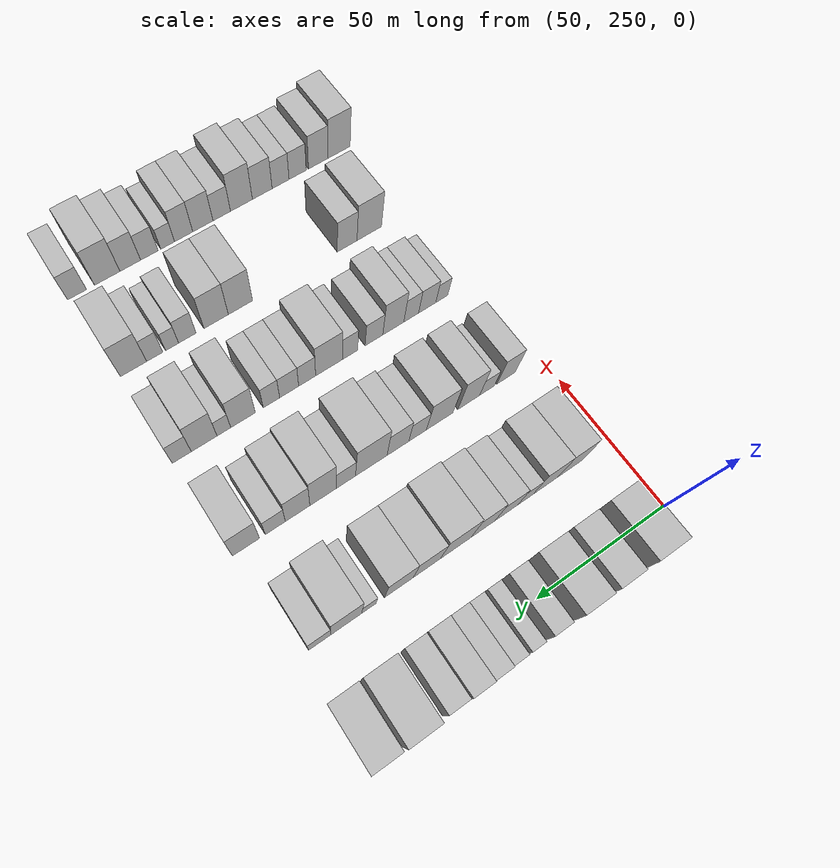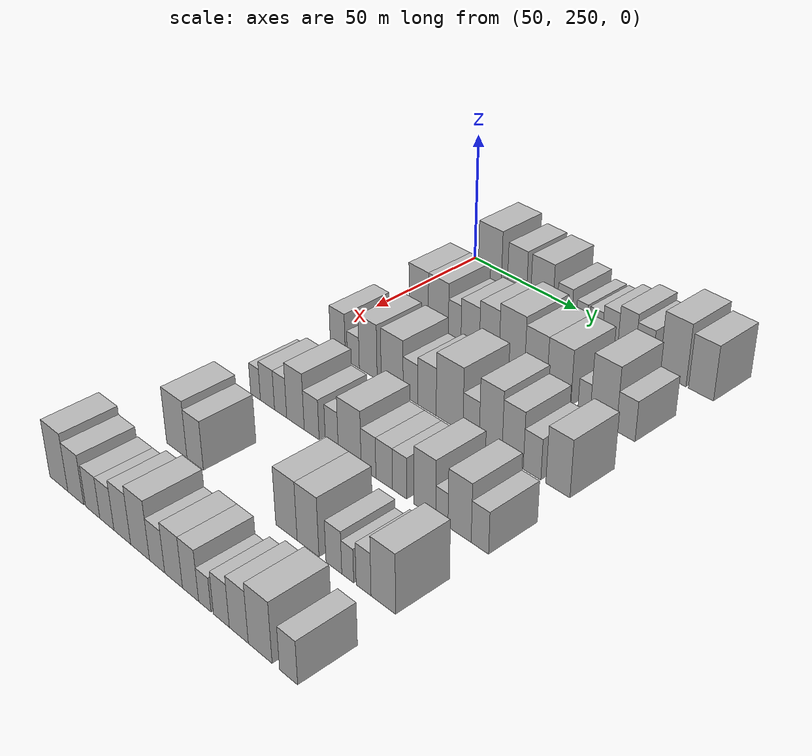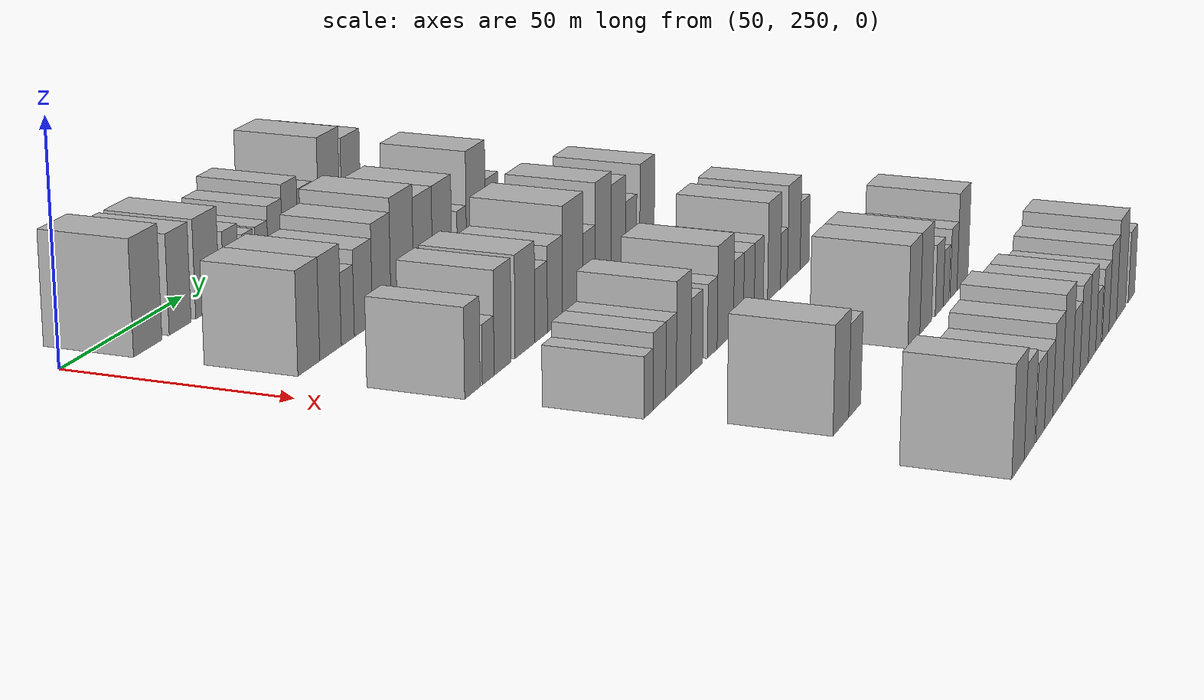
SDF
<sdf version="1.6">
 <world name="default">
  <model name="building_94">
   <static>1</static>
   <pose>50.0000 266.8254 0 0.000000 0.000000 0.000000</pose>
   <link name="link">
    <pose>0 0 12.00 0 0 0</pose>
    <collision name="collision"><geometry><box><size>20.0000 11.5621 24.0000</size></box></geometry></collision>
    <visual name="visual">
     <cast_shadows>0</cast_shadows>
     <geometry><box><size>20.0000 11.5621 24.0000</size></box></geometry>
     <material>
      <script>
       <uri>model://HANNAS_wall/materials/scripts</uri>
       <uri>model://HANNAS_wall/materials/textures</uri>
       <name>vrc/HANNAS_wall</name>
      </script>
     </material>
    </visual>
   </link>
  </model>
  <model name="building_95">
   <static>1</static>
   <pose>50.0000 280.2415 0 0.000000 0.000000 0.000000</pose>
   <link name="link">
    <pose>0 0 10.50 0 0 0</pose>
    <collision name="collision"><geometry><box><size>20.0000 9.2701 21.0000</size></box></geometry></collision>
    <visual name="visual">
     <cast_shadows>0</cast_shadows>
     <geometry><box><size>20.0000 9.2701 21.0000</size></box></geometry>
     <material>
      <script>
       <uri>model://HANNAS_wall/materials/scripts</uri>
       <uri>model://HANNAS_wall/materials/textures</uri>
       <name>vrc/HANNAS_wall</name>
      </script>
     </material>
    </visual>
   </link>
  </model>
  <model name="building_96">
   <static>1</static>
   <pose>50.0000 292.1171 0 0.000000 0.000000 0.000000</pose>
   <link name="link">
    <pose>0 0 10.50 0 0 0</pose>
    <collision name="collision"><geometry><box><size>20.0000 10.4813 21.0000</size></box></geometry></collision>
    <visual name="visual">
     <cast_shadows>0</cast_shadows>
     <geometry><box><size>20.0000 10.4813 21.0000</size></box></geometry>
     <material>
      <script>
       <uri>model://HANNAS_wall/materials/scripts</uri>
       <uri>model://HANNAS_wall/materials/textures</uri>
       <name>vrc/HANNAS_wall</name>
      </script>
     </material>
    </visual>
   </link>
  </model>
  <model name="building_97">
   <static>1</static>
   <pose>50.0000 302.7258 0 0.000000 0.000000 0.000000</pose>
   <link name="link">
    <pose>0 0 7.50 0 0 0</pose>
    <collision name="collision"><geometry><box><size>20.0000 6.7361 15.0000</size></box></geometry></collision>
    <visual name="visual">
     <cast_shadows>0</cast_shadows>
     <geometry><box><size>20.0000 6.7361 15.0000</size></box></geometry>
     <material>
      <script>
       <uri>model://HANNAS_wall/materials/scripts</uri>
       <uri>model://HANNAS_wall/materials/textures</uri>
       <name>vrc/HANNAS_wall</name>
      </script>
     </material>
    </visual>
   </link>
  </model>
  <model name="building_98">
   <static>1</static>
   <pose>50.0000 310.5782 0 0.000000 0.000000 0.000000</pose>
   <link name="link">
    <pose>0 0 6.00 0 0 0</pose>
    <collision name="collision"><geometry><box><size>20.0000 4.9687 12.0000</size></box></geometry></collision>
    <visual name="visual">
     <cast_shadows>0</cast_shadows>
     <geometry><box><size>20.0000 4.9687 12.0000</size></box></geometry>
     <material>
      <script>
       <uri>model://HANNAS_wall/materials/scripts</uri>
       <uri>model://HANNAS_wall/materials/textures</uri>
       <name>vrc/HANNAS_wall</name>
      </script>
     </material>
    </visual>
   </link>
  </model>
  <model name="building_99">
   <static>1</static>
   <pose>50.0000 316.9918 0 0.000000 0.000000 0.000000</pose>
   <link name="link">
    <pose>0 0 6.00 0 0 0</pose>
    <collision name="collision"><geometry><box><size>20.0000 5.8584 12.0000</size></box></geometry></collision>
    <visual name="visual">
     <cast_shadows>0</cast_shadows>
     <geometry><box><size>20.0000 5.8584 12.0000</size></box></geometry>
     <material>
      <script>
       <uri>model://HANNAS_wall/materials/scripts</uri>
       <uri>model://HANNAS_wall/materials/textures</uri>
       <name>vrc/HANNAS_wall</name>
      </script>
     </material>
    </visual>
   </link>
  </model>
  <model name="building_100">
   <static>1</static>
   <pose>50.0000 323.3669 0 0.000000 0.000000 0.000000</pose>
   <link name="link">
    <pose>0 0 7.50 0 0 0</pose>
    <collision name="collision"><geometry><box><size>20.0000 6.8918 15.0000</size></box></geometry></collision>
    <visual name="visual">
     <cast_shadows>0</cast_shadows>
     <geometry><box><size>20.0000 6.8918 15.0000</size></box></geometry>
     <material>
      <script>
       <uri>model://HANNAS_wall/materials/scripts</uri>
       <uri>model://HANNAS_wall/materials/textures</uri>
       <name>vrc/HANNAS_wall</name>
      </script>
     </material>
    </visual>
   </link>
  </model>
  <model name="building_101">
   <static>1</static>
   <pose>50.0000 330.6076 0 0.000000 0.000000 0.000000</pose>
   <link name="link">
    <pose>0 0 9.00 0 0 0</pose>
    <collision name="collision"><geometry><box><size>20.0000 7.5897 18.0000</size></box></geometry></collision>
    <visual name="visual">
     <cast_shadows>0</cast_shadows>
     <geometry><box><size>20.0000 7.5897 18.0000</size></box></geometry>
     <material>
      <script>
       <uri>model://HANNAS_wall/materials/scripts</uri>
       <uri>model://HANNAS_wall/materials/textures</uri>
       <name>vrc/HANNAS_wall</name>
      </script>
     </material>
    </visual>
   </link>
  </model>
  <model name="building_102">
   <static>1</static>
   <pose>50.0000 338.0944 0 0.000000 0.000000 0.000000</pose>
   <link name="link">
    <pose>0 0 7.50 0 0 0</pose>
    <collision name="collision"><geometry><box><size>20.0000 7.3841 15.0000</size></box></geometry></collision>
    <visual name="visual">
     <cast_shadows>0</cast_shadows>
     <geometry><box><size>20.0000 7.3841 15.0000</size></box></geometry>
     <material>
      <script>
       <uri>model://HANNAS_wall/materials/scripts</uri>
       <uri>model://HANNAS_wall/materials/textures</uri>
       <name>vrc/HANNAS_wall</name>
      </script>
     </material>
    </visual>
   </link>
  </model>
  <model name="building_103">
   <static>1</static>
   <pose>50.0000 350.2658 0 0.000000 0.000000 0.000000</pose>
   <link name="link">
    <pose>0 0 12.00 0 0 0</pose>
    <collision name="collision"><geometry><box><size>20.0000 10.9587 24.0000</size></box></geometry></collision>
    <visual name="visual">
     <cast_shadows>0</cast_shadows>
     <geometry><box><size>20.0000 10.9587 24.0000</size></box></geometry>
     <material>
      <script>
       <uri>model://HANNAS_wall/materials/scripts</uri>
       <uri>model://HANNAS_wall/materials/textures</uri>
       <name>vrc/HANNAS_wall</name>
      </script>
     </material>
    </visual>
   </link>
  </model>
  <model name="building_104">
   <static>1</static>
   <pose>50.0000 361.7712 0 0.000000 0.000000 0.000000</pose>
   <link name="link">
    <pose>0 0 10.50 0 0 0</pose>
    <collision name="collision"><geometry><box><size>20.0000 10.0519 21.0000</size></box></geometry></collision>
    <visual name="visual">
     <cast_shadows>0</cast_shadows>
     <geometry><box><size>20.0000 10.0519 21.0000</size></box></geometry>
     <material>
      <script>
       <uri>model://HANNAS_wall/materials/scripts</uri>
       <uri>model://HANNAS_wall/materials/textures</uri>
       <name>vrc/HANNAS_wall</name>
      </script>
     </material>
    </visual>
   </link>
  </model>
  <model name="building_221">
   <static>1</static>
   <pose>85.0000 266.5807 0 0.000000 0.000000 0.000000</pose>
   <link name="link">
    <pose>0 0 10.50 0 0 0</pose>
    <collision name="collision"><geometry><box><size>20.0000 9.7152 21.0000</size></box></geometry></collision>
    <visual name="visual">
     <cast_shadows>0</cast_shadows>
     <geometry><box><size>20.0000 9.7152 21.0000</size></box></geometry>
     <material>
      <script>
       <uri>model://HANNAS_wall/materials/scripts</uri>
       <uri>model://HANNAS_wall/materials/textures</uri>
       <name>vrc/HANNAS_wall</name>
      </script>
     </material>
    </visual>
   </link>
  </model>
  <model name="building_222">
   <static>1</static>
   <pose>85.0000 276.3650 0 0.000000 0.000000 0.000000</pose>
   <link name="link">
    <pose>0 0 10.50 0 0 0</pose>
    <collision name="collision"><geometry><box><size>20.0000 9.8534 21.0000</size></box></geometry></collision>
    <visual name="visual">
     <cast_shadows>0</cast_shadows>
     <geometry><box><size>20.0000 9.8534 21.0000</size></box></geometry>
     <material>
      <script>
       <uri>model://HANNAS_wall/materials/scripts</uri>
       <uri>model://HANNAS_wall/materials/textures</uri>
       <name>vrc/HANNAS_wall</name>
      </script>
     </material>
    </visual>
   </link>
  </model>
  <model name="building_223">
   <static>1</static>
   <pose>85.0000 284.3371 0 0.000000 0.000000 0.000000</pose>
   <link name="link">
    <pose>0 0 7.50 0 0 0</pose>
    <collision name="collision"><geometry><box><size>20.0000 6.0909 15.0000</size></box></geometry></collision>
    <visual name="visual">
     <cast_shadows>0</cast_shadows>
     <geometry><box><size>20.0000 6.0909 15.0000</size></box></geometry>
     <material>
      <script>
       <uri>model://HANNAS_wall/materials/scripts</uri>
       <uri>model://HANNAS_wall/materials/textures</uri>
       <name>vrc/HANNAS_wall</name>
      </script>
     </material>
    </visual>
   </link>
  </model>
  <model name="building_224">
   <static>1</static>
   <pose>85.0000 291.7462 0 0.000000 0.000000 0.000000</pose>
   <link name="link">
    <pose>0 0 9.00 0 0 0</pose>
    <collision name="collision"><geometry><box><size>20.0000 8.7273 18.0000</size></box></geometry></collision>
    <visual name="visual">
     <cast_shadows>0</cast_shadows>
     <geometry><box><size>20.0000 8.7273 18.0000</size></box></geometry>
     <material>
      <script>
       <uri>model://HANNAS_wall/materials/scripts</uri>
       <uri>model://HANNAS_wall/materials/textures</uri>
       <name>vrc/HANNAS_wall</name>
      </script>
     </material>
    </visual>
   </link>
  </model>
  <model name="building_225">
   <static>1</static>
   <pose>85.0000 300.6588 0 0.000000 0.000000 0.000000</pose>
   <link name="link">
    <pose>0 0 10.50 0 0 0</pose>
    <collision name="collision"><geometry><box><size>20.0000 9.0979 21.0000</size></box></geometry></collision>
    <visual name="visual">
     <cast_shadows>0</cast_shadows>
     <geometry><box><size>20.0000 9.0979 21.0000</size></box></geometry>
     <material>
      <script>
       <uri>model://HANNAS_wall/materials/scripts</uri>
       <uri>model://HANNAS_wall/materials/textures</uri>
       <name>vrc/HANNAS_wall</name>
      </script>
     </material>
    </visual>
   </link>
  </model>
  <model name="building_226">
   <static>1</static>
   <pose>85.0000 310.9662 0 0.000000 0.000000 0.000000</pose>
   <link name="link">
    <pose>0 0 12.00 0 0 0</pose>
    <collision name="collision"><geometry><box><size>20.0000 11.5169 24.0000</size></box></geometry></collision>
    <visual name="visual">
     <cast_shadows>0</cast_shadows>
     <geometry><box><size>20.0000 11.5169 24.0000</size></box></geometry>
     <material>
      <script>
       <uri>model://HANNAS_wall/materials/scripts</uri>
       <uri>model://HANNAS_wall/materials/textures</uri>
       <name>vrc/HANNAS_wall</name>
      </script>
     </material>
    </visual>
   </link>
  </model>
  <model name="building_227">
   <static>1</static>
   <pose>85.0000 321.6649 0 0.000000 0.000000 0.000000</pose>
   <link name="link">
    <pose>0 0 10.50 0 0 0</pose>
    <collision name="collision"><geometry><box><size>20.0000 9.8803 21.0000</size></box></geometry></collision>
    <visual name="visual">
     <cast_shadows>0</cast_shadows>
     <geometry><box><size>20.0000 9.8803 21.0000</size></box></geometry>
     <material>
      <script>
       <uri>model://HANNAS_wall/materials/scripts</uri>
       <uri>model://HANNAS_wall/materials/textures</uri>
       <name>vrc/HANNAS_wall</name>
      </script>
     </material>
    </visual>
   </link>
  </model>
  <model name="building_228">
   <static>1</static>
   <pose>85.0000 331.7912 0 0.000000 0.000000 0.000000</pose>
   <link name="link">
    <pose>0 0 10.50 0 0 0</pose>
    <collision name="collision"><geometry><box><size>20.0000 10.3722 21.0000</size></box></geometry></collision>
    <visual name="visual">
     <cast_shadows>0</cast_shadows>
     <geometry><box><size>20.0000 10.3722 21.0000</size></box></geometry>
     <material>
      <script>
       <uri>model://HANNAS_wall/materials/scripts</uri>
       <uri>model://HANNAS_wall/materials/textures</uri>
       <name>vrc/HANNAS_wall</name>
      </script>
     </material>
    </visual>
   </link>
  </model>
  <model name="building_229">
   <static>1</static>
   <pose>85.0000 342.5302 0 0.000000 0.000000 0.000000</pose>
   <link name="link">
    <pose>0 0 6.00 0 0 0</pose>
    <collision name="collision"><geometry><box><size>20.0000 5.1058 12.0000</size></box></geometry></collision>
    <visual name="visual">
     <cast_shadows>0</cast_shadows>
     <geometry><box><size>20.0000 5.1058 12.0000</size></box></geometry>
     <material>
      <script>
       <uri>model://HANNAS_wall/materials/scripts</uri>
       <uri>model://HANNAS_wall/materials/textures</uri>
       <name>vrc/HANNAS_wall</name>
      </script>
     </material>
    </visual>
   </link>
  </model>
  <model name="building_230">
   <static>1</static>
   <pose>85.0000 350.4660 0 0.000000 0.000000 0.000000</pose>
   <link name="link">
    <pose>0 0 12.00 0 0 0</pose>
    <collision name="collision"><geometry><box><size>20.0000 10.7658 24.0000</size></box></geometry></collision>
    <visual name="visual">
     <cast_shadows>0</cast_shadows>
     <geometry><box><size>20.0000 10.7658 24.0000</size></box></geometry>
     <material>
      <script>
       <uri>model://HANNAS_wall/materials/scripts</uri>
       <uri>model://HANNAS_wall/materials/textures</uri>
       <name>vrc/HANNAS_wall</name>
      </script>
     </material>
    </visual>
   </link>
  </model>
  <model name="building_231">
   <static>1</static>
   <pose>85.0000 359.5985 0 0.000000 0.000000 0.000000</pose>
   <link name="link">
    <pose>0 0 7.50 0 0 0</pose>
    <collision name="collision"><geometry><box><size>20.0000 7.4993 15.0000</size></box></geometry></collision>
    <visual name="visual">
     <cast_shadows>0</cast_shadows>
     <geometry><box><size>20.0000 7.4993 15.0000</size></box></geometry>
     <material>
      <script>
       <uri>model://HANNAS_wall/materials/scripts</uri>
       <uri>model://HANNAS_wall/materials/textures</uri>
       <name>vrc/HANNAS_wall</name>
      </script>
     </material>
    </visual>
   </link>
  </model>
  <model name="building_348">
   <static>1</static>
   <pose>120.0000 264.2456 0 0.000000 0.000000 0.000000</pose>
   <link name="link">
    <pose>0 0 9.00 0 0 0</pose>
    <collision name="collision"><geometry><box><size>20.0000 7.5755 18.0000</size></box></geometry></collision>
    <visual name="visual">
     <cast_shadows>0</cast_shadows>
     <geometry><box><size>20.0000 7.5755 18.0000</size></box></geometry>
     <material>
      <script>
       <uri>model://HANNAS_wall/materials/scripts</uri>
       <uri>model://HANNAS_wall/materials/textures</uri>
       <name>vrc/HANNAS_wall</name>
      </script>
     </material>
    </visual>
   </link>
  </model>
  <model name="building_349">
   <static>1</static>
   <pose>120.0000 272.0163 0 0.000000 0.000000 0.000000</pose>
   <link name="link">
    <pose>0 0 6.00 0 0 0</pose>
    <collision name="collision"><geometry><box><size>20.0000 5.9661 12.0000</size></box></geometry></collision>
    <visual name="visual">
     <cast_shadows>0</cast_shadows>
     <geometry><box><size>20.0000 5.9661 12.0000</size></box></geometry>
     <material>
      <script>
       <uri>model://HANNAS_wall/materials/scripts</uri>
       <uri>model://HANNAS_wall/materials/textures</uri>
       <name>vrc/HANNAS_wall</name>
      </script>
     </material>
    </visual>
   </link>
  </model>
  <model name="building_350">
   <static>1</static>
   <pose>120.0000 279.3815 0 0.000000 0.000000 0.000000</pose>
   <link name="link">
    <pose>0 0 10.50 0 0 0</pose>
    <collision name="collision"><geometry><box><size>20.0000 8.7643 21.0000</size></box></geometry></collision>
    <visual name="visual">
     <cast_shadows>0</cast_shadows>
     <geometry><box><size>20.0000 8.7643 21.0000</size></box></geometry>
     <material>
      <script>
       <uri>model://HANNAS_wall/materials/scripts</uri>
       <uri>model://HANNAS_wall/materials/textures</uri>
       <name>vrc/HANNAS_wall</name>
      </script>
     </material>
    </visual>
   </link>
  </model>
  <model name="building_351">
   <static>1</static>
   <pose>120.0000 291.0115 0 0.000000 0.000000 0.000000</pose>
   <link name="link">
    <pose>0 0 10.50 0 0 0</pose>
    <collision name="collision"><geometry><box><size>20.0000 10.4957 21.0000</size></box></geometry></collision>
    <visual name="visual">
     <cast_shadows>0</cast_shadows>
     <geometry><box><size>20.0000 10.4957 21.0000</size></box></geometry>
     <material>
      <script>
       <uri>model://HANNAS_wall/materials/scripts</uri>
       <uri>model://HANNAS_wall/materials/textures</uri>
       <name>vrc/HANNAS_wall</name>
      </script>
     </material>
    </visual>
   </link>
  </model>
  <model name="building_352">
   <static>1</static>
   <pose>120.0000 299.6904 0 0.000000 0.000000 0.000000</pose>
   <link name="link">
    <pose>0 0 7.50 0 0 0</pose>
    <collision name="collision"><geometry><box><size>20.0000 6.8620 15.0000</size></box></geometry></collision>
    <visual name="visual">
     <cast_shadows>0</cast_shadows>
     <geometry><box><size>20.0000 6.8620 15.0000</size></box></geometry>
     <material>
      <script>
       <uri>model://HANNAS_wall/materials/scripts</uri>
       <uri>model://HANNAS_wall/materials/textures</uri>
       <name>vrc/HANNAS_wall</name>
      </script>
     </material>
    </visual>
   </link>
  </model>
  <model name="building_353">
   <static>1</static>
   <pose>120.0000 307.3112 0 0.000000 0.000000 0.000000</pose>
   <link name="link">
    <pose>0 0 9.00 0 0 0</pose>
    <collision name="collision"><geometry><box><size>20.0000 8.3797 18.0000</size></box></geometry></collision>
    <visual name="visual">
     <cast_shadows>0</cast_shadows>
     <geometry><box><size>20.0000 8.3797 18.0000</size></box></geometry>
     <material>
      <script>
       <uri>model://HANNAS_wall/materials/scripts</uri>
       <uri>model://HANNAS_wall/materials/textures</uri>
       <name>vrc/HANNAS_wall</name>
      </script>
     </material>
    </visual>
   </link>
  </model>
  <model name="building_354">
   <static>1</static>
   <pose>120.0000 317.4723 0 0.000000 0.000000 0.000000</pose>
   <link name="link">
    <pose>0 0 12.00 0 0 0</pose>
    <collision name="collision"><geometry><box><size>20.0000 11.9426 24.0000</size></box></geometry></collision>
    <visual name="visual">
     <cast_shadows>0</cast_shadows>
     <geometry><box><size>20.0000 11.9426 24.0000</size></box></geometry>
     <material>
      <script>
       <uri>model://HANNAS_wall/materials/scripts</uri>
       <uri>model://HANNAS_wall/materials/textures</uri>
       <name>vrc/HANNAS_wall</name>
      </script>
     </material>
    </visual>
   </link>
  </model>
  <model name="building_355">
   <static>1</static>
   <pose>120.0000 326.9856 0 0.000000 0.000000 0.000000</pose>
   <link name="link">
    <pose>0 0 7.50 0 0 0</pose>
    <collision name="collision"><geometry><box><size>20.0000 7.0841 15.0000</size></box></geometry></collision>
    <visual name="visual">
     <cast_shadows>0</cast_shadows>
     <geometry><box><size>20.0000 7.0841 15.0000</size></box></geometry>
     <material>
      <script>
       <uri>model://HANNAS_wall/materials/scripts</uri>
       <uri>model://HANNAS_wall/materials/textures</uri>
       <name>vrc/HANNAS_wall</name>
      </script>
     </material>
    </visual>
   </link>
  </model>
  <model name="building_356">
   <static>1</static>
   <pose>120.0000 335.3794 0 0.000000 0.000000 0.000000</pose>
   <link name="link">
    <pose>0 0 12.00 0 0 0</pose>
    <collision name="collision"><geometry><box><size>20.0000 9.7035 24.0000</size></box></geometry></collision>
    <visual name="visual">
     <cast_shadows>0</cast_shadows>
     <geometry><box><size>20.0000 9.7035 24.0000</size></box></geometry>
     <material>
      <script>
       <uri>model://HANNAS_wall/materials/scripts</uri>
       <uri>model://HANNAS_wall/materials/textures</uri>
       <name>vrc/HANNAS_wall</name>
      </script>
     </material>
    </visual>
   </link>
  </model>
  <model name="building_357">
   <static>1</static>
   <pose>120.0000 344.6459 0 0.000000 0.000000 0.000000</pose>
   <link name="link">
    <pose>0 0 10.50 0 0 0</pose>
    <collision name="collision"><geometry><box><size>20.0000 8.8295 21.0000</size></box></geometry></collision>
    <visual name="visual">
     <cast_shadows>0</cast_shadows>
     <geometry><box><size>20.0000 8.8295 21.0000</size></box></geometry>
     <material>
      <script>
       <uri>model://HANNAS_wall/materials/scripts</uri>
       <uri>model://HANNAS_wall/materials/textures</uri>
       <name>vrc/HANNAS_wall</name>
      </script>
     </material>
    </visual>
   </link>
  </model>
  <model name="building_358">
   <static>1</static>
   <pose>120.0000 352.6520 0 0.000000 0.000000 0.000000</pose>
   <link name="link">
    <pose>0 0 7.50 0 0 0</pose>
    <collision name="collision"><geometry><box><size>20.0000 7.1827 15.0000</size></box></geometry></collision>
    <visual name="visual">
     <cast_shadows>0</cast_shadows>
     <geometry><box><size>20.0000 7.1827 15.0000</size></box></geometry>
     <material>
      <script>
       <uri>model://HANNAS_wall/materials/scripts</uri>
       <uri>model://HANNAS_wall/materials/textures</uri>
       <name>vrc/HANNAS_wall</name>
      </script>
     </material>
    </visual>
   </link>
  </model>
  <model name="building_359">
   <static>1</static>
   <pose>120.0000 363.0070 0 0.000000 0.000000 0.000000</pose>
   <link name="link">
    <pose>0 0 10.50 0 0 0</pose>
    <collision name="collision"><geometry><box><size>20.0000 9.5272 21.0000</size></box></geometry></collision>
    <visual name="visual">
     <cast_shadows>0</cast_shadows>
     <geometry><box><size>20.0000 9.5272 21.0000</size></box></geometry>
     <material>
      <script>
       <uri>model://HANNAS_wall/materials/scripts</uri>
       <uri>model://HANNAS_wall/materials/textures</uri>
       <name>vrc/HANNAS_wall</name>
      </script>
     </material>
    </visual>
   </link>
  </model>
  <model name="building_475">
   <static>1</static>
   <pose>155.0000 264.2606 0 0.000000 0.000000 0.000000</pose>
   <link name="link">
    <pose>0 0 6.00 0 0 0</pose>
    <collision name="collision"><geometry><box><size>20.0000 5.0499 12.0000</size></box></geometry></collision>
    <visual name="visual">
     <cast_shadows>0</cast_shadows>
     <geometry><box><size>20.0000 5.0499 12.0000</size></box></geometry>
     <material>
      <script>
       <uri>model://HANNAS_wall/materials/scripts</uri>
       <uri>model://HANNAS_wall/materials/textures</uri>
       <name>vrc/HANNAS_wall</name>
      </script>
     </material>
    </visual>
   </link>
  </model>
  <model name="building_476">
   <static>1</static>
   <pose>155.0000 270.3635 0 0.000000 0.000000 0.000000</pose>
   <link name="link">
    <pose>0 0 7.50 0 0 0</pose>
    <collision name="collision"><geometry><box><size>20.0000 7.1559 15.0000</size></box></geometry></collision>
    <visual name="visual">
     <cast_shadows>0</cast_shadows>
     <geometry><box><size>20.0000 7.1559 15.0000</size></box></geometry>
     <material>
      <script>
       <uri>model://HANNAS_wall/materials/scripts</uri>
       <uri>model://HANNAS_wall/materials/textures</uri>
       <name>vrc/HANNAS_wall</name>
      </script>
     </material>
    </visual>
   </link>
  </model>
  <model name="building_477">
   <static>1</static>
   <pose>155.0000 276.9947 0 0.000000 0.000000 0.000000</pose>
   <link name="link">
    <pose>0 0 7.50 0 0 0</pose>
    <collision name="collision"><geometry><box><size>20.0000 6.1066 15.0000</size></box></geometry></collision>
    <visual name="visual">
     <cast_shadows>0</cast_shadows>
     <geometry><box><size>20.0000 6.1066 15.0000</size></box></geometry>
     <material>
      <script>
       <uri>model://HANNAS_wall/materials/scripts</uri>
       <uri>model://HANNAS_wall/materials/textures</uri>
       <name>vrc/HANNAS_wall</name>
      </script>
     </material>
    </visual>
   </link>
  </model>
  <model name="building_478">
   <static>1</static>
   <pose>155.0000 284.3536 0 0.000000 0.000000 0.000000</pose>
   <link name="link">
    <pose>0 0 10.50 0 0 0</pose>
    <collision name="collision"><geometry><box><size>20.0000 8.6113 21.0000</size></box></geometry></collision>
    <visual name="visual">
     <cast_shadows>0</cast_shadows>
     <geometry><box><size>20.0000 8.6113 21.0000</size></box></geometry>
     <material>
      <script>
       <uri>model://HANNAS_wall/materials/scripts</uri>
       <uri>model://HANNAS_wall/materials/textures</uri>
       <name>vrc/HANNAS_wall</name>
      </script>
     </material>
    </visual>
   </link>
  </model>
  <model name="building_479">
   <static>1</static>
   <pose>155.0000 292.2371 0 0.000000 0.000000 0.000000</pose>
   <link name="link">
    <pose>0 0 7.50 0 0 0</pose>
    <collision name="collision"><geometry><box><size>20.0000 7.1555 15.0000</size></box></geometry></collision>
    <visual name="visual">
     <cast_shadows>0</cast_shadows>
     <geometry><box><size>20.0000 7.1555 15.0000</size></box></geometry>
     <material>
      <script>
       <uri>model://HANNAS_wall/materials/scripts</uri>
       <uri>model://HANNAS_wall/materials/textures</uri>
       <name>vrc/HANNAS_wall</name>
      </script>
     </material>
    </visual>
   </link>
  </model>
  <model name="building_480">
   <static>1</static>
   <pose>155.0000 301.8315 0 0.000000 0.000000 0.000000</pose>
   <link name="link">
    <pose>0 0 7.50 0 0 0</pose>
    <collision name="collision"><geometry><box><size>20.0000 6.0334 15.0000</size></box></geometry></collision>
    <visual name="visual">
     <cast_shadows>0</cast_shadows>
     <geometry><box><size>20.0000 6.0334 15.0000</size></box></geometry>
     <material>
      <script>
       <uri>model://HANNAS_wall/materials/scripts</uri>
       <uri>model://HANNAS_wall/materials/textures</uri>
       <name>vrc/HANNAS_wall</name>
      </script>
     </material>
    </visual>
   </link>
  </model>
  <model name="building_481">
   <static>1</static>
   <pose>155.0000 310.0880 0 0.000000 0.000000 0.000000</pose>
   <link name="link">
    <pose>0 0 10.50 0 0 0</pose>
    <collision name="collision"><geometry><box><size>20.0000 10.4796 21.0000</size></box></geometry></collision>
    <visual name="visual">
     <cast_shadows>0</cast_shadows>
     <geometry><box><size>20.0000 10.4796 21.0000</size></box></geometry>
     <material>
      <script>
       <uri>model://HANNAS_wall/materials/scripts</uri>
       <uri>model://HANNAS_wall/materials/textures</uri>
       <name>vrc/HANNAS_wall</name>
      </script>
     </material>
    </visual>
   </link>
  </model>
  <model name="building_482">
   <static>1</static>
   <pose>155.0000 318.6158 0 0.000000 0.000000 0.000000</pose>
   <link name="link">
    <pose>0 0 7.50 0 0 0</pose>
    <collision name="collision"><geometry><box><size>20.0000 6.5760 15.0000</size></box></geometry></collision>
    <visual name="visual">
     <cast_shadows>0</cast_shadows>
     <geometry><box><size>20.0000 6.5760 15.0000</size></box></geometry>
     <material>
      <script>
       <uri>model://HANNAS_wall/materials/scripts</uri>
       <uri>model://HANNAS_wall/materials/textures</uri>
       <name>vrc/HANNAS_wall</name>
      </script>
     </material>
    </visual>
   </link>
  </model>
  <model name="building_483">
   <static>1</static>
   <pose>155.0000 325.5291 0 0.000000 0.000000 0.000000</pose>
   <link name="link">
    <pose>0 0 7.50 0 0 0</pose>
    <collision name="collision"><geometry><box><size>20.0000 7.2507 15.0000</size></box></geometry></collision>
    <visual name="visual">
     <cast_shadows>0</cast_shadows>
     <geometry><box><size>20.0000 7.2507 15.0000</size></box></geometry>
     <material>
      <script>
       <uri>model://HANNAS_wall/materials/scripts</uri>
       <uri>model://HANNAS_wall/materials/textures</uri>
       <name>vrc/HANNAS_wall</name>
      </script>
     </material>
    </visual>
   </link>
  </model>
  <model name="building_484">
   <static>1</static>
   <pose>155.0000 332.2553 0 0.000000 0.000000 0.000000</pose>
   <link name="link">
    <pose>0 0 7.50 0 0 0</pose>
    <collision name="collision"><geometry><box><size>20.0000 6.2016 15.0000</size></box></geometry></collision>
    <visual name="visual">
     <cast_shadows>0</cast_shadows>
     <geometry><box><size>20.0000 6.2016 15.0000</size></box></geometry>
     <material>
      <script>
       <uri>model://HANNAS_wall/materials/scripts</uri>
       <uri>model://HANNAS_wall/materials/textures</uri>
       <name>vrc/HANNAS_wall</name>
      </script>
     </material>
    </visual>
   </link>
  </model>
  <model name="building_485">
   <static>1</static>
   <pose>155.0000 342.9175 0 0.000000 0.000000 0.000000</pose>
   <link name="link">
    <pose>0 0 10.50 0 0 0</pose>
    <collision name="collision"><geometry><box><size>20.0000 9.1228 21.0000</size></box></geometry></collision>
    <visual name="visual">
     <cast_shadows>0</cast_shadows>
     <geometry><box><size>20.0000 9.1228 21.0000</size></box></geometry>
     <material>
      <script>
       <uri>model://HANNAS_wall/materials/scripts</uri>
       <uri>model://HANNAS_wall/materials/textures</uri>
       <name>vrc/HANNAS_wall</name>
      </script>
     </material>
    </visual>
   </link>
  </model>
  <model name="building_486">
   <static>1</static>
   <pose>155.0000 350.0030 0 0.000000 0.000000 0.000000</pose>
   <link name="link">
    <pose>0 0 6.00 0 0 0</pose>
    <collision name="collision"><geometry><box><size>20.0000 5.0483 12.0000</size></box></geometry></collision>
    <visual name="visual">
     <cast_shadows>0</cast_shadows>
     <geometry><box><size>20.0000 5.0483 12.0000</size></box></geometry>
     <material>
      <script>
       <uri>model://HANNAS_wall/materials/scripts</uri>
       <uri>model://HANNAS_wall/materials/textures</uri>
       <name>vrc/HANNAS_wall</name>
      </script>
     </material>
    </visual>
   </link>
  </model>
  <model name="building_487">
   <static>1</static>
   <pose>155.0000 357.1877 0 0.000000 0.000000 0.000000</pose>
   <link name="link">
    <pose>0 0 10.50 0 0 0</pose>
    <collision name="collision"><geometry><box><size>20.0000 9.3211 21.0000</size></box></geometry></collision>
    <visual name="visual">
     <cast_shadows>0</cast_shadows>
     <geometry><box><size>20.0000 9.3211 21.0000</size></box></geometry>
     <material>
      <script>
       <uri>model://HANNAS_wall/materials/scripts</uri>
       <uri>model://HANNAS_wall/materials/textures</uri>
       <name>vrc/HANNAS_wall</name>
      </script>
     </material>
    </visual>
   </link>
  </model>
  <model name="building_488">
   <static>1</static>
   <pose>155.0000 365.2657 0 0.000000 0.000000 0.000000</pose>
   <link name="link">
    <pose>0 0 7.50 0 0 0</pose>
    <collision name="collision"><geometry><box><size>20.0000 6.8349 15.0000</size></box></geometry></collision>
    <visual name="visual">
     <cast_shadows>0</cast_shadows>
     <geometry><box><size>20.0000 6.8349 15.0000</size></box></geometry>
     <material>
      <script>
       <uri>model://HANNAS_wall/materials/scripts</uri>
       <uri>model://HANNAS_wall/materials/textures</uri>
       <name>vrc/HANNAS_wall</name>
      </script>
     </material>
    </visual>
   </link>
  </model>
  <model name="building_603">
   <static>1</static>
   <pose>190.0000 270.0010 0 0.000000 0.000000 0.000000</pose>
   <link name="link">
    <pose>0 0 10.50 0 0 0</pose>
    <collision name="collision"><geometry><box><size>20.0000 10.4554 21.0000</size></box></geometry></collision>
    <visual name="visual">
     <cast_shadows>0</cast_shadows>
     <geometry><box><size>20.0000 10.4554 21.0000</size></box></geometry>
     <material>
      <script>
       <uri>model://HANNAS_wall/materials/scripts</uri>
       <uri>model://HANNAS_wall/materials/textures</uri>
       <name>vrc/HANNAS_wall</name>
      </script>
     </material>
    </visual>
   </link>
  </model>
  <model name="building_604">
   <static>1</static>
   <pose>190.0000 279.3742 0 0.000000 0.000000 0.000000</pose>
   <link name="link">
    <pose>0 0 9.00 0 0 0</pose>
    <collision name="collision"><geometry><box><size>20.0000 8.2908 18.0000</size></box></geometry></collision>
    <visual name="visual">
     <cast_shadows>0</cast_shadows>
     <geometry><box><size>20.0000 8.2908 18.0000</size></box></geometry>
     <material>
      <script>
       <uri>model://HANNAS_wall/materials/scripts</uri>
       <uri>model://HANNAS_wall/materials/textures</uri>
       <name>vrc/HANNAS_wall</name>
      </script>
     </material>
    </visual>
   </link>
  </model>
  <model name="building_605">
   <static>1</static>
   <pose>190.0000 322.8212 0 0.000000 0.000000 0.000000</pose>
   <link name="link">
    <pose>0 0 10.50 0 0 0</pose>
    <collision name="collision"><geometry><box><size>20.0000 9.5344 21.0000</size></box></geometry></collision>
    <visual name="visual">
     <cast_shadows>0</cast_shadows>
     <geometry><box><size>20.0000 9.5344 21.0000</size></box></geometry>
     <material>
      <script>
       <uri>model://HANNAS_wall/materials/scripts</uri>
       <uri>model://HANNAS_wall/materials/textures</uri>
       <name>vrc/HANNAS_wall</name>
      </script>
     </material>
    </visual>
   </link>
  </model>
  <model name="building_606">
   <static>1</static>
   <pose>190.0000 332.3296 0 0.000000 0.000000 0.000000</pose>
   <link name="link">
    <pose>0 0 10.50 0 0 0</pose>
    <collision name="collision"><geometry><box><size>20.0000 9.4825 21.0000</size></box></geometry></collision>
    <visual name="visual">
     <cast_shadows>0</cast_shadows>
     <geometry><box><size>20.0000 9.4825 21.0000</size></box></geometry>
     <material>
      <script>
       <uri>model://HANNAS_wall/materials/scripts</uri>
       <uri>model://HANNAS_wall/materials/textures</uri>
       <name>vrc/HANNAS_wall</name>
      </script>
     </material>
    </visual>
   </link>
  </model>
  <model name="building_607">
   <static>1</static>
   <pose>190.0000 343.3982 0 0.000000 0.000000 0.000000</pose>
   <link name="link">
    <pose>0 0 7.50 0 0 0</pose>
    <collision name="collision"><geometry><box><size>20.0000 6.6548 15.0000</size></box></geometry></collision>
    <visual name="visual">
     <cast_shadows>0</cast_shadows>
     <geometry><box><size>20.0000 6.6548 15.0000</size></box></geometry>
     <material>
      <script>
       <uri>model://HANNAS_wall/materials/scripts</uri>
       <uri>model://HANNAS_wall/materials/textures</uri>
       <name>vrc/HANNAS_wall</name>
      </script>
     </material>
    </visual>
   </link>
  </model>
  <model name="building_608">
   <static>1</static>
   <pose>190.0000 349.1957 0 0.000000 0.000000 0.000000</pose>
   <link name="link">
    <pose>0 0 6.00 0 0 0</pose>
    <collision name="collision"><geometry><box><size>20.0000 4.9402 12.0000</size></box></geometry></collision>
    <visual name="visual">
     <cast_shadows>0</cast_shadows>
     <geometry><box><size>20.0000 4.9402 12.0000</size></box></geometry>
     <material>
      <script>
       <uri>model://HANNAS_wall/materials/scripts</uri>
       <uri>model://HANNAS_wall/materials/textures</uri>
       <name>vrc/HANNAS_wall</name>
      </script>
     </material>
    </visual>
   </link>
  </model>
  <model name="building_609">
   <static>1</static>
   <pose>190.0000 355.6847 0 0.000000 0.000000 0.000000</pose>
   <link name="link">
    <pose>0 0 7.50 0 0 0</pose>
    <collision name="collision"><geometry><box><size>20.0000 6.0377 15.0000</size></box></geometry></collision>
    <visual name="visual">
     <cast_shadows>0</cast_shadows>
     <geometry><box><size>20.0000 6.0377 15.0000</size></box></geometry>
     <material>
      <script>
       <uri>model://HANNAS_wall/materials/scripts</uri>
       <uri>model://HANNAS_wall/materials/textures</uri>
       <name>vrc/HANNAS_wall</name>
      </script>
     </material>
    </visual>
   </link>
  </model>
  <model name="building_610">
   <static>1</static>
   <pose>190.0000 363.5736 0 0.000000 0.000000 0.000000</pose>
   <link name="link">
    <pose>0 0 10.50 0 0 0</pose>
    <collision name="collision"><geometry><box><size>20.0000 9.7400 21.0000</size></box></geometry></collision>
    <visual name="visual">
     <cast_shadows>0</cast_shadows>
     <geometry><box><size>20.0000 9.7400 21.0000</size></box></geometry>
     <material>
      <script>
       <uri>model://HANNAS_wall/materials/scripts</uri>
       <uri>model://HANNAS_wall/materials/textures</uri>
       <name>vrc/HANNAS_wall</name>
      </script>
     </material>
    </visual>
   </link>
  </model>
  <model name="building_729">
   <static>1</static>
   <pose>225.0000 259.4047 0 0.000000 0.000000 0.000000</pose>
   <link name="link">
    <pose>0 0 10.50 0 0 0</pose>
    <collision name="collision"><geometry><box><size>20.0000 9.8108 21.0000</size></box></geometry></collision>
    <visual name="visual">
     <cast_shadows>0</cast_shadows>
     <geometry><box><size>20.0000 9.8108 21.0000</size></box></geometry>
     <material>
      <script>
       <uri>model://HANNAS_wall/materials/scripts</uri>
       <uri>model://HANNAS_wall/materials/textures</uri>
       <name>vrc/HANNAS_wall</name>
      </script>
     </material>
    </visual>
   </link>
  </model>
  <model name="building_730">
   <static>1</static>
   <pose>225.0000 268.5598 0 0.000000 0.000000 0.000000</pose>
   <link name="link">
    <pose>0 0 9.00 0 0 0</pose>
    <collision name="collision"><geometry><box><size>20.0000 8.4994 18.0000</size></box></geometry></collision>
    <visual name="visual">
     <cast_shadows>0</cast_shadows>
     <geometry><box><size>20.0000 8.4994 18.0000</size></box></geometry>
     <material>
      <script>
       <uri>model://HANNAS_wall/materials/scripts</uri>
       <uri>model://HANNAS_wall/materials/textures</uri>
       <name>vrc/HANNAS_wall</name>
      </script>
     </material>
    </visual>
   </link>
  </model>
  <model name="building_731">
   <static>1</static>
   <pose>225.0000 277.5098 0 0.000000 0.000000 0.000000</pose>
   <link name="link">
    <pose>0 0 7.50 0 0 0</pose>
    <collision name="collision"><geometry><box><size>20.0000 7.4007 15.0000</size></box></geometry></collision>
    <visual name="visual">
     <cast_shadows>0</cast_shadows>
     <geometry><box><size>20.0000 7.4007 15.0000</size></box></geometry>
     <material>
      <script>
       <uri>model://HANNAS_wall/materials/scripts</uri>
       <uri>model://HANNAS_wall/materials/textures</uri>
       <name>vrc/HANNAS_wall</name>
      </script>
     </material>
    </visual>
   </link>
  </model>
  <model name="building_732">
   <static>1</static>
   <pose>225.0000 284.8065 0 0.000000 0.000000 0.000000</pose>
   <link name="link">
    <pose>0 0 7.50 0 0 0</pose>
    <collision name="collision"><geometry><box><size>20.0000 7.1926 15.0000</size></box></geometry></collision>
    <visual name="visual">
     <cast_shadows>0</cast_shadows>
     <geometry><box><size>20.0000 7.1926 15.0000</size></box></geometry>
     <material>
      <script>
       <uri>model://HANNAS_wall/materials/scripts</uri>
       <uri>model://HANNAS_wall/materials/textures</uri>
       <name>vrc/HANNAS_wall</name>
      </script>
     </material>
    </visual>
   </link>
  </model>
  <model name="building_733">
   <static>1</static>
   <pose>225.0000 292.5763 0 0.000000 0.000000 0.000000</pose>
   <link name="link">
    <pose>0 0 9.00 0 0 0</pose>
    <collision name="collision"><geometry><box><size>20.0000 8.3470 18.0000</size></box></geometry></collision>
    <visual name="visual">
     <cast_shadows>0</cast_shadows>
     <geometry><box><size>20.0000 8.3470 18.0000</size></box></geometry>
     <material>
      <script>
       <uri>model://HANNAS_wall/materials/scripts</uri>
       <uri>model://HANNAS_wall/materials/textures</uri>
       <name>vrc/HANNAS_wall</name>
      </script>
     </material>
    </visual>
   </link>
  </model>
  <model name="building_734">
   <static>1</static>
   <pose>225.0000 301.3226 0 0.000000 0.000000 0.000000</pose>
   <link name="link">
    <pose>0 0 10.50 0 0 0</pose>
    <collision name="collision"><geometry><box><size>20.0000 9.1455 21.0000</size></box></geometry></collision>
    <visual name="visual">
     <cast_shadows>0</cast_shadows>
     <geometry><box><size>20.0000 9.1455 21.0000</size></box></geometry>
     <material>
      <script>
       <uri>model://HANNAS_wall/materials/scripts</uri>
       <uri>model://HANNAS_wall/materials/textures</uri>
       <name>vrc/HANNAS_wall</name>
      </script>
     </material>
    </visual>
   </link>
  </model>
  <model name="building_735">
   <static>1</static>
   <pose>225.0000 309.5019 0 0.000000 0.000000 0.000000</pose>
   <link name="link">
    <pose>0 0 7.50 0 0 0</pose>
    <collision name="collision"><geometry><box><size>20.0000 7.2131 15.0000</size></box></geometry></collision>
    <visual name="visual">
     <cast_shadows>0</cast_shadows>
     <geometry><box><size>20.0000 7.2131 15.0000</size></box></geometry>
     <material>
      <script>
       <uri>model://HANNAS_wall/materials/scripts</uri>
       <uri>model://HANNAS_wall/materials/textures</uri>
       <name>vrc/HANNAS_wall</name>
      </script>
     </material>
    </visual>
   </link>
  </model>
  <model name="building_736">
   <static>1</static>
   <pose>225.0000 317.2235 0 0.000000 0.000000 0.000000</pose>
   <link name="link">
    <pose>0 0 9.00 0 0 0</pose>
    <collision name="collision"><geometry><box><size>20.0000 8.2300 18.0000</size></box></geometry></collision>
    <visual name="visual">
     <cast_shadows>0</cast_shadows>
     <geometry><box><size>20.0000 8.2300 18.0000</size></box></geometry>
     <material>
      <script>
       <uri>model://HANNAS_wall/materials/scripts</uri>
       <uri>model://HANNAS_wall/materials/textures</uri>
       <name>vrc/HANNAS_wall</name>
      </script>
     </material>
    </visual>
   </link>
  </model>
  <model name="building_737">
   <static>1</static>
   <pose>225.0000 324.9907 0 0.000000 0.000000 0.000000</pose>
   <link name="link">
    <pose>0 0 9.00 0 0 0</pose>
    <collision name="collision"><geometry><box><size>20.0000 7.3044 18.0000</size></box></geometry></collision>
    <visual name="visual">
     <cast_shadows>0</cast_shadows>
     <geometry><box><size>20.0000 7.3044 18.0000</size></box></geometry>
     <material>
      <script>
       <uri>model://HANNAS_wall/materials/scripts</uri>
       <uri>model://HANNAS_wall/materials/textures</uri>
       <name>vrc/HANNAS_wall</name>
      </script>
     </material>
    </visual>
   </link>
  </model>
  <model name="building_738">
   <static>1</static>
   <pose>225.0000 331.4172 0 0.000000 0.000000 0.000000</pose>
   <link name="link">
    <pose>0 0 6.00 0 0 0</pose>
    <collision name="collision"><geometry><box><size>20.0000 5.5486 12.0000</size></box></geometry></collision>
    <visual name="visual">
     <cast_shadows>0</cast_shadows>
     <geometry><box><size>20.0000 5.5486 12.0000</size></box></geometry>
     <material>
      <script>
       <uri>model://HANNAS_wall/materials/scripts</uri>
       <uri>model://HANNAS_wall/materials/textures</uri>
       <name>vrc/HANNAS_wall</name>
      </script>
     </material>
    </visual>
   </link>
  </model>
  <model name="building_739">
   <static>1</static>
   <pose>225.0000 338.6508 0 0.000000 0.000000 0.000000</pose>
   <link name="link">
    <pose>0 0 7.50 0 0 0</pose>
    <collision name="collision"><geometry><box><size>20.0000 6.9188 15.0000</size></box></geometry></collision>
    <visual name="visual">
     <cast_shadows>0</cast_shadows>
     <geometry><box><size>20.0000 6.9188 15.0000</size></box></geometry>
     <material>
      <script>
       <uri>model://HANNAS_wall/materials/scripts</uri>
       <uri>model://HANNAS_wall/materials/textures</uri>
       <name>vrc/HANNAS_wall</name>
      </script>
     </material>
    </visual>
   </link>
  </model>
  <model name="building_740">
   <static>1</static>
   <pose>225.0000 346.1315 0 0.000000 0.000000 0.000000</pose>
   <link name="link">
    <pose>0 0 9.00 0 0 0</pose>
    <collision name="collision"><geometry><box><size>20.0000 8.0427 18.0000</size></box></geometry></collision>
    <visual name="visual">
     <cast_shadows>0</cast_shadows>
     <geometry><box><size>20.0000 8.0427 18.0000</size></box></geometry>
     <material>
      <script>
       <uri>model://HANNAS_wall/materials/scripts</uri>
       <uri>model://HANNAS_wall/materials/textures</uri>
       <name>vrc/HANNAS_wall</name>
      </script>
     </material>
    </visual>
   </link>
  </model>
  <model name="building_741">
   <static>1</static>
   <pose>225.0000 355.0548 0 0.000000 0.000000 0.000000</pose>
   <link name="link">
    <pose>0 0 10.50 0 0 0</pose>
    <collision name="collision"><geometry><box><size>20.0000 9.8039 21.0000</size></box></geometry></collision>
    <visual name="visual">
     <cast_shadows>0</cast_shadows>
     <geometry><box><size>20.0000 9.8039 21.0000</size></box></geometry>
     <material>
      <script>
       <uri>model://HANNAS_wall/materials/scripts</uri>
       <uri>model://HANNAS_wall/materials/textures</uri>
       <name>vrc/HANNAS_wall</name>
      </script>
     </material>
    </visual>
   </link>
  </model>
  <model name="building_742">
   <static>1</static>
   <pose>225.0000 366.5506 0 0.000000 0.000000 0.000000</pose>
   <link name="link">
    <pose>0 0 7.50 0 0 0</pose>
    <collision name="collision"><geometry><box><size>20.0000 7.1876 15.0000</size></box></geometry></collision>
    <visual name="visual">
     <cast_shadows>0</cast_shadows>
     <geometry><box><size>20.0000 7.1876 15.0000</size></box></geometry>
     <material>
      <script>
       <uri>model://HANNAS_wall/materials/scripts</uri>
       <uri>model://HANNAS_wall/materials/textures</uri>
       <name>vrc/HANNAS_wall</name>
      </script>
     </material>
    </visual>
   </link>
  </model>
 </world>
</sdf>
